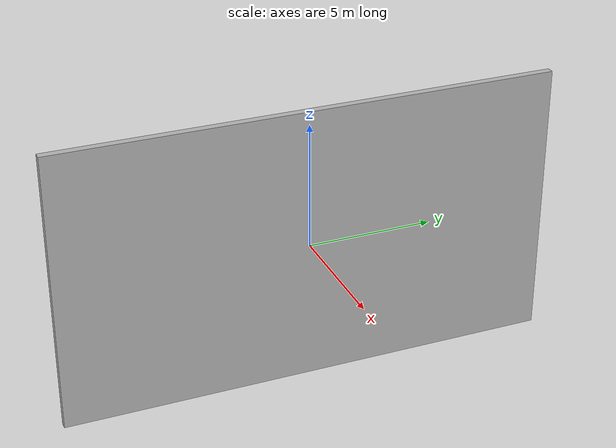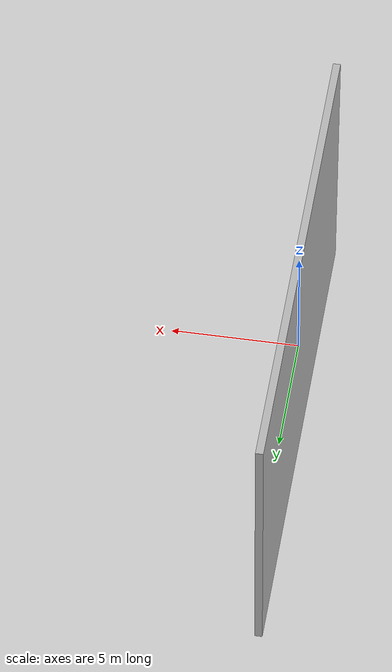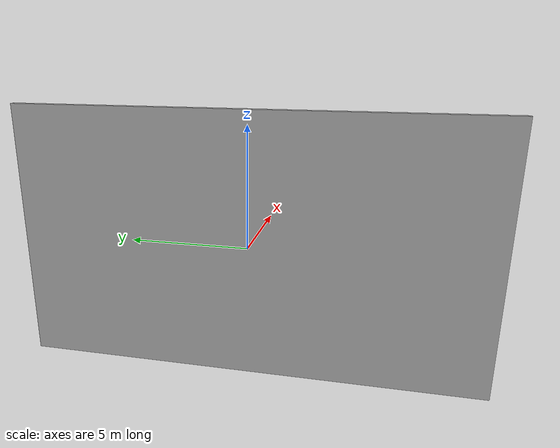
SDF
<?xml version="1.0" ?>
<sdf version="1.5">
    <model name='unit_box'>
      <static>1</static>
      <pose frame=''>0 0 0 0 0 0</pose>
      <link name='link'>
        <inertial>
          <mass>1</mass>
          <inertia>
            <ixx>0.166667</ixx>
            <ixy>0</ixy>
            <ixz>0</ixz>
            <iyy>0.166667</iyy>
            <iyz>0</iyz>
            <izz>0.166667</izz>
          </inertia>
          <pose frame=''>0 0 0 0 0 0</pose>
        </inertial>
        <visual name='visual'>
          <geometry>
            <box>
              <size>0.3 20 11.2</size>
            </box>
          </geometry>
            <material>
                <script>
                    <name>Wall</name>
                    <uri>model://wall/scripts/repeated.material</uri>
                </script>
            </material>
        </visual>
        <self_collide>0</self_collide>
        <enable_wind>0</enable_wind>
        <kinematic>0</kinematic>
      </link>
    </model>
</sdf>
